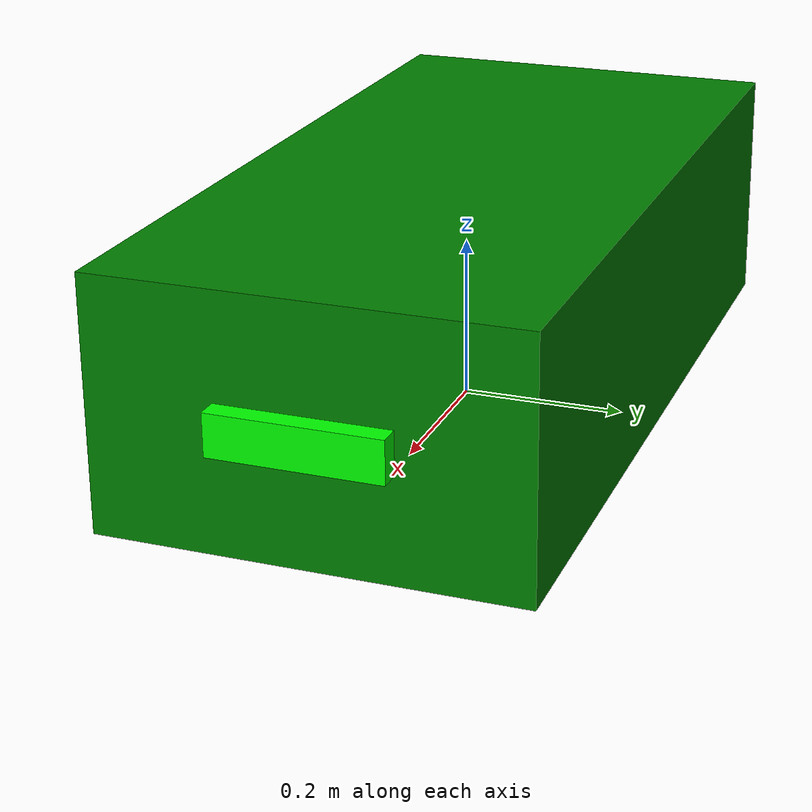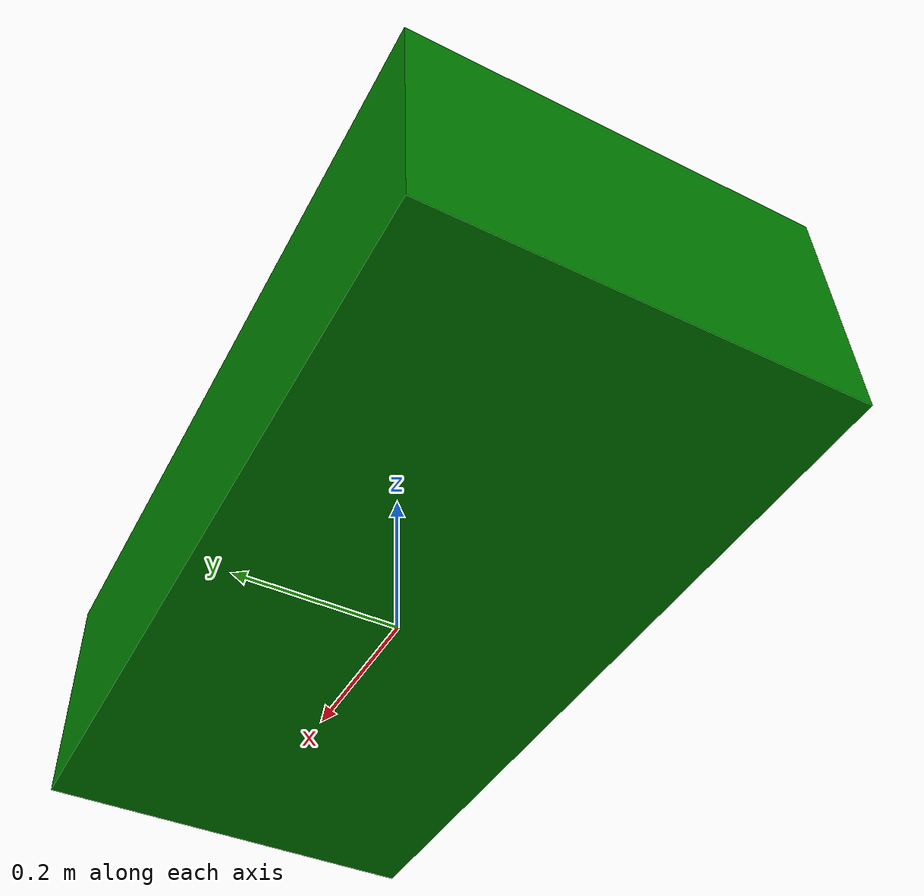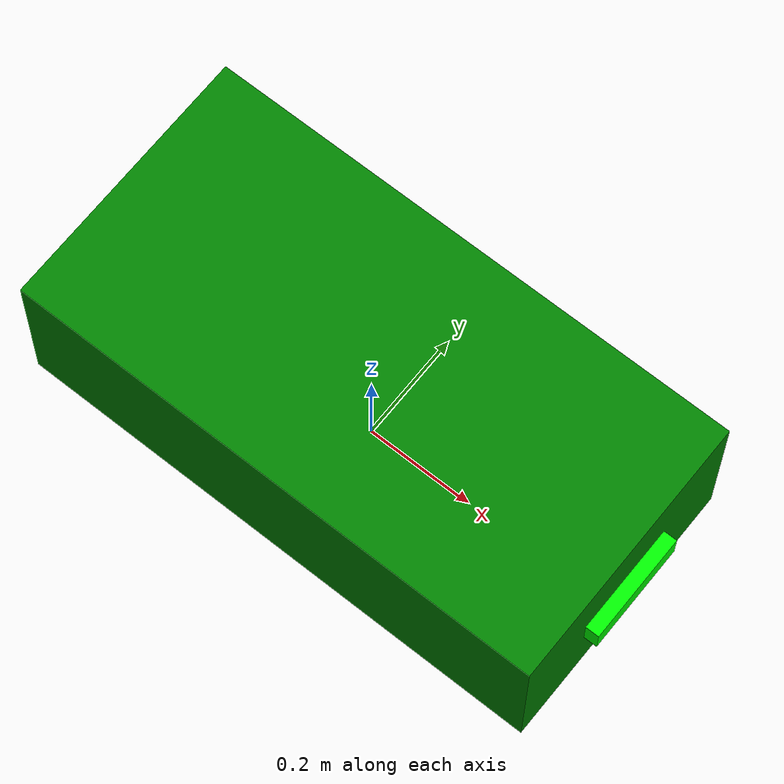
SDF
<?xml version="1.0"?>
<!--
  Charging Station Model
  Dimensions: 1.0m x 0.5m x 0.3m
-->
<sdf version="1.8">
<model name="charging_station">
  <static>true</static>
  <link name="link">
    <pose>0 0 0.15 0 0 0</pose>
    <collision name="collision">
      <geometry><box><size>1.0 0.5 0.3</size></box></geometry>
    </collision>
    <visual name="visual">
      <geometry><box><size>1.0 0.5 0.3</size></box></geometry>
      <material>
        <ambient>0.0 0.5 0.0 1.0</ambient>
        <diffuse>0.0 0.5 0.0 1.0</diffuse>
      </material>
    </visual>
  </link>
  <!-- Charging contact point marker -->
  <link name="contact_marker">
    <pose>0.5 0 0.15 0 0 0</pose>
    <visual name="visual">
      <geometry><box><size>0.05 0.2 0.05</size></box></geometry>
      <material>
        <ambient>0.0 1.0 0.0 1.0</ambient>
        <diffuse>0.0 1.0 0.0 1.0</diffuse>
      </material>
    </visual>
  </link>
  <joint name="marker_joint" type="fixed">
    <parent>link</parent>
    <child>contact_marker</child>
  </joint>
</model>
</sdf>
